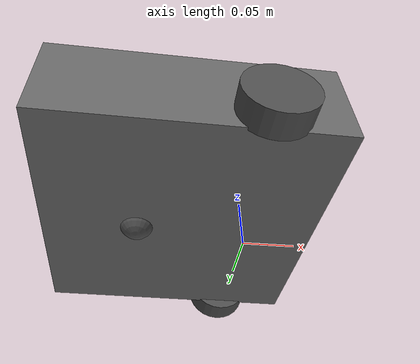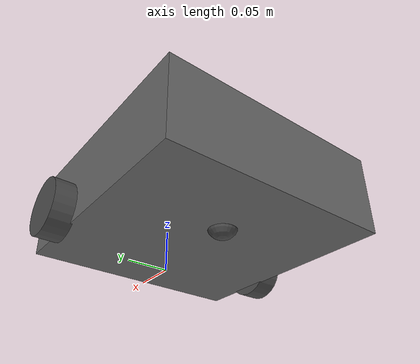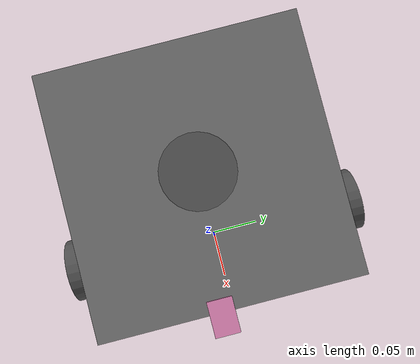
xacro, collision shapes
<?xml version="1.0"?>
<robot xmlns:xacro="http://www.ros.org/wiki/xacro" name="delivery_robot">

  <xacro:include filename="$(find robo_ai)/gazebo/delivery_robot.gazebo"/>

  <xacro:property name="wheel_radius" value="0.033"/>
  <xacro:property name="wheel_width" value="0.026"/>
  <xacro:property name="wheel_separation" value="0.287"/>
  <xacro:property name="base_mass" value="2.0"/>
  <xacro:property name="wheel_mass" value="0.05"/>
  <!-- Official TB3 Waffle Pi base height above ground. -->
  <xacro:property name="base_z_offset" value="0.010"/>

  <!-- TurtleBot3 common_properties.urdf palette -->
  <material name="black">
    <color rgba="0.0 0.0 0.0 1.0"/>
  </material>
  <material name="dark">
    <color rgba="0.3 0.3 0.3 1.0"/>
  </material>
  <material name="light_black">
    <color rgba="0.4 0.4 0.4 1.0"/>
  </material>
  <material name="blue">
    <color rgba="0.0 0.0 0.8 1.0"/>
  </material>
  <material name="green">
    <color rgba="0.0 0.8 0.0 1.0"/>
  </material>
  <material name="grey">
    <color rgba="0.5 0.5 0.5 1.0"/>
  </material>
  <material name="orange">
    <color rgba="1.0 0.4235 0.0392 1.0"/>
  </material>
  <material name="brown">
    <color rgba="0.8706 0.8118 0.7647 1.0"/>
  </material>
  <material name="red">
    <color rgba="0.8 0.0 0.0 1.0"/>
  </material>
  <material name="white">
    <color rgba="1.0 1.0 1.0 1.0"/>
  </material>

  <!-- Nav2 root frame at ground level. Gazebo drives odom against this frame. -->
  <link name="base_footprint"/>

  <joint name="base_joint" type="fixed">
    <origin xyz="0 0 ${base_z_offset}" rpy="0 0 0"/>
    <parent link="base_footprint"/>
    <child link="base_link"/>
  </joint>

  <link name="base_link">
    <inertial>
      <origin xyz="0 0 0" rpy="0 0 0"/>
      <mass value="${base_mass}"/>
      <inertia ixx="0.018" iyy="0.018" izz="0.028" ixy="0" iyz="0" ixz="0"/>
    </inertial>
    <visual>
      <origin xyz="-0.064 0 0.0" rpy="0 0 0"/>
      <geometry>
        <mesh filename="package://robo_ai/models/delivery_robot/meshes/waffle_pi_base.stl" scale="0.001 0.001 0.001"/>
      </geometry>
      <material name="light_black"/>
    </visual>
    <collision>
      <origin xyz="-0.064 0 0.047" rpy="0 0 0"/>
      <geometry>
        <box size="0.266 0.266 0.094"/>
      </geometry>
    </collision>
  </link>

  <link name="left_wheel_link">
    <inertial>
      <origin xyz="0 0 0" rpy="0 0 0"/>
      <mass value="${wheel_mass}"/>
      <inertia ixx="0.00003" iyy="0.00003" izz="0.00006" ixy="0" iyz="0" ixz="0"/>
    </inertial>
    <visual>
      <origin xyz="0 0 0" rpy="0 0 0"/>
      <geometry>
        <mesh filename="package://robo_ai/models/delivery_robot/meshes/left_tire.stl" scale="0.001 0.001 0.001"/>
      </geometry>
      <material name="dark"/>
    </visual>
    <collision>
      <origin xyz="0 0 0" rpy="1.5708 0 0"/>
      <geometry>
        <cylinder radius="${wheel_radius}" length="${wheel_width}"/>
      </geometry>
    </collision>
  </link>

  <joint name="left_wheel_joint" type="continuous">
    <origin xyz="0 ${wheel_separation / 2.0} ${wheel_radius - base_z_offset}" rpy="0 0 0"/>
    <parent link="base_link"/>
    <child link="left_wheel_link"/>
    <axis xyz="0 1 0"/>
  </joint>

  <link name="right_wheel_link">
    <inertial>
      <origin xyz="0 0 0" rpy="0 0 0"/>
      <mass value="${wheel_mass}"/>
      <inertia ixx="0.00003" iyy="0.00003" izz="0.00006" ixy="0" iyz="0" ixz="0"/>
    </inertial>
    <visual>
      <origin xyz="0 0 0" rpy="0 0 0"/>
      <geometry>
        <mesh filename="package://robo_ai/models/delivery_robot/meshes/right_tire.stl" scale="0.001 0.001 0.001"/>
      </geometry>
      <material name="dark"/>
    </visual>
    <collision>
      <origin xyz="0 0 0" rpy="1.5708 0 0"/>
      <geometry>
        <cylinder radius="${wheel_radius}" length="${wheel_width}"/>
      </geometry>
    </collision>
  </link>

  <joint name="right_wheel_joint" type="continuous">
    <origin xyz="0 -${wheel_separation / 2.0} ${wheel_radius - base_z_offset}" rpy="0 0 0"/>
    <parent link="base_link"/>
    <child link="right_wheel_link"/>
    <axis xyz="0 1 0"/>
  </joint>

  <link name="caster_link">
    <inertial>
      <origin xyz="0 0 0" rpy="0 0 0"/>
      <mass value="0.02"/>
      <inertia ixx="0.000001" iyy="0.000001" izz="0.000001" ixy="0" iyz="0" ixz="0"/>
    </inertial>
    <visual>
      <origin xyz="0 0 0" rpy="0 0 0"/>
      <geometry>
        <sphere radius="0.018"/>
      </geometry>
      <material name="dark"/>
    </visual>
    <collision>
      <origin xyz="0 0 0" rpy="0 0 0"/>
      <geometry>
        <sphere radius="0.018"/>
      </geometry>
    </collision>
  </link>

  <joint name="caster_joint" type="fixed">
    <origin xyz="-0.105 0 ${0.018 - base_z_offset}" rpy="0 0 0"/>
    <parent link="base_link"/>
    <child link="caster_link"/>
  </joint>

  <link name="lidar">
    <inertial>
      <origin xyz="0 0 0" rpy="0 0 0"/>
      <mass value="0.08"/>
      <inertia ixx="0.00002" iyy="0.00002" izz="0.00002" ixy="0" iyz="0" ixz="0"/>
    </inertial>
    <visual>
      <origin xyz="0 0 0.0" rpy="0 0 0"/>
      <geometry>
        <mesh filename="package://robo_ai/models/delivery_robot/meshes/lds.stl" scale="0.001 0.001 0.001"/>
      </geometry>
      <material name="dark"/>
    </visual>
    <collision>
      <origin xyz="0 0 0" rpy="0 0 0"/>
      <geometry>
        <cylinder radius="0.035" length="0.035"/>
      </geometry>
    </collision>
  </link>

  <joint name="lidar_joint" type="fixed">
    <origin xyz="-0.064 0 0.122" rpy="0 0 0"/>
    <parent link="base_link"/>
    <child link="lidar"/>
  </joint>

  <link name="camera_link">
    <inertial>
      <origin xyz="0 0 0" rpy="0 0 0"/>
      <mass value="0.02"/>
      <inertia ixx="0.000001" iyy="0.000001" izz="0.000001" ixy="0" iyz="0" ixz="0"/>
    </inertial>
    <visual>
      <origin xyz="0 0 0" rpy="1.5708 0 1.5708"/>
      <geometry>
        <mesh filename="package://robo_ai/models/delivery_robot/meshes/r200.dae"/>
      </geometry>
    </visual>
    <collision>
      <origin xyz="0 0 0" rpy="0 0 0"/>
      <geometry>
        <box size="0.035 0.025 0.025"/>
      </geometry>
    </collision>
  </link>

  <joint name="camera_joint" type="fixed">
    <origin xyz="0.073 -0.011 0.084" rpy="0 0 0"/>
    <parent link="base_link"/>
    <child link="camera_link"/>
  </joint>

  <!-- ROS optical frame convention: Z forward, X right, Y down. -->
  <link name="camera_optical_frame"/>

  <joint name="camera_optical_joint" type="fixed">
    <origin xyz="0 0 0" rpy="-1.5708 0 -1.5708"/>
    <parent link="camera_link"/>
    <child link="camera_optical_frame"/>
  </joint>

  <!-- IMU Sensor -->
  <link name="imu_link">
    <inertial>
      <origin xyz="0 0 0" rpy="0 0 0"/>
      <mass value="0.01"/>
      <inertia ixx="0.000001" iyy="0.000001" izz="0.000001" ixy="0" iyz="0" ixz="0"/>
    </inertial>
    <visual>
      <origin xyz="0 0 0" rpy="0 0 0"/>
      <geometry>
        <box size="0.02 0.02 0.01"/>
      </geometry>
      <material name="blue"/>
    </visual>
    <collision>
      <origin xyz="0 0 0" rpy="0 0 0"/>
      <geometry>
        <box size="0.02 0.02 0.01"/>
      </geometry>
    </collision>
  </link>

  <joint name="imu_joint" type="fixed">
    <origin xyz="0 0 0.06" rpy="0 0 0"/>
    <parent link="base_link"/>
    <child link="imu_link"/>
  </joint>

</robot>
